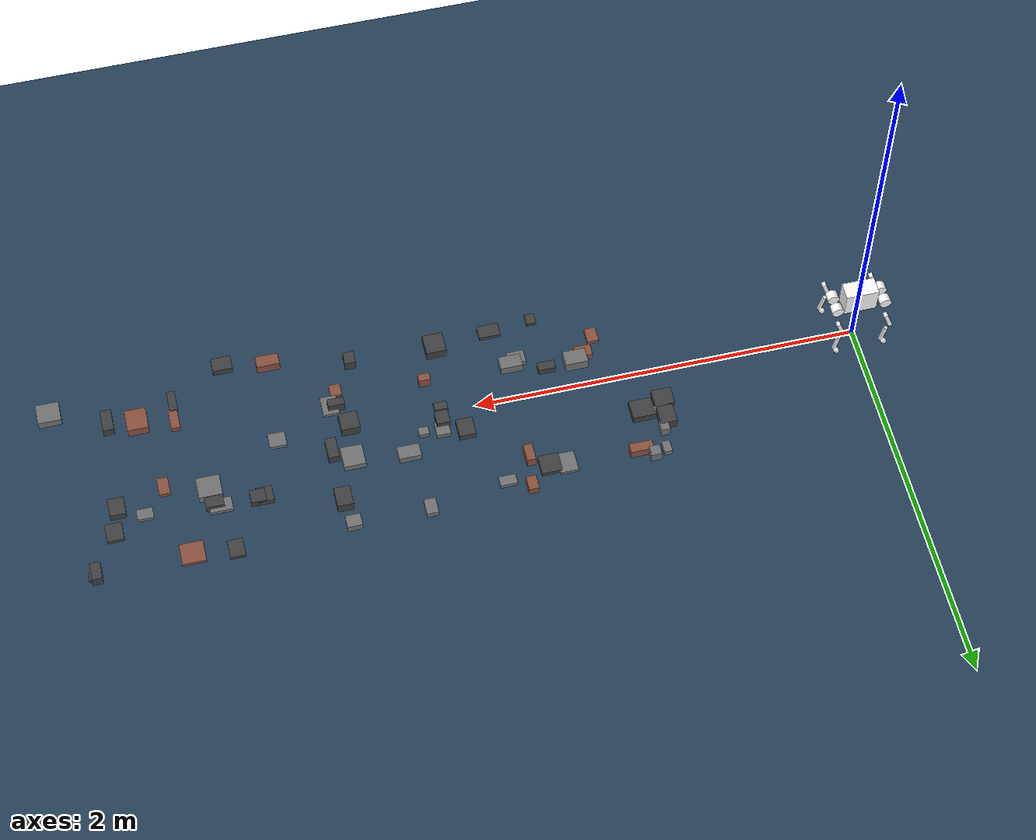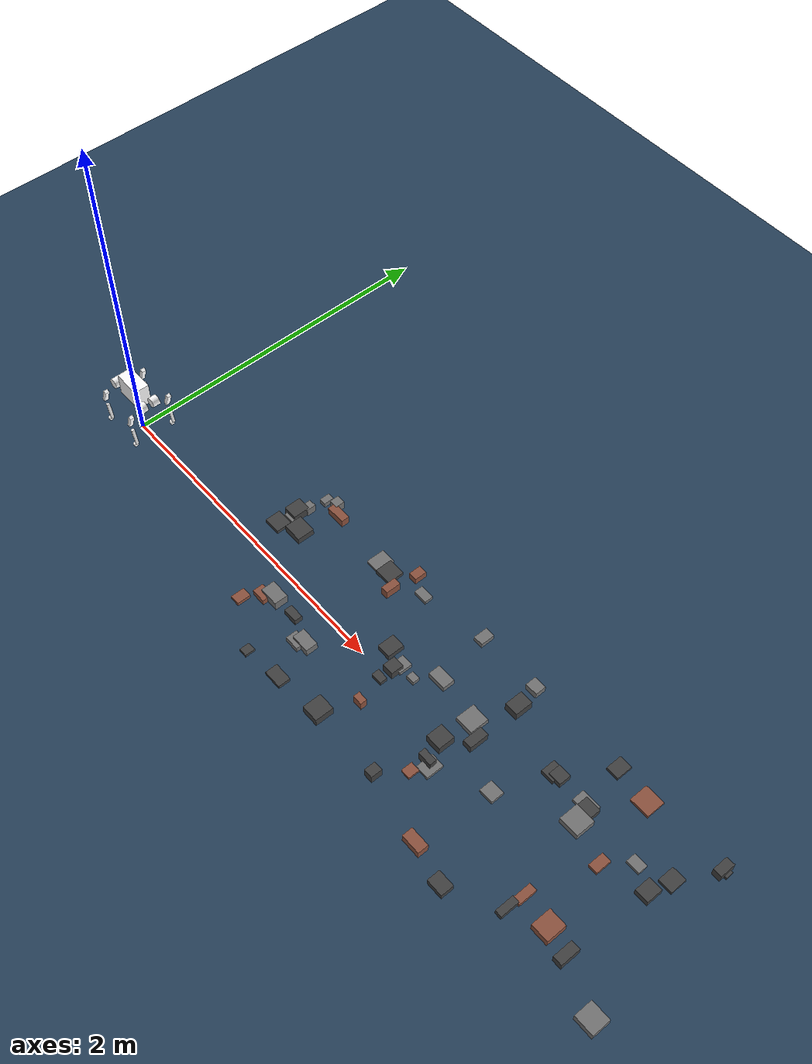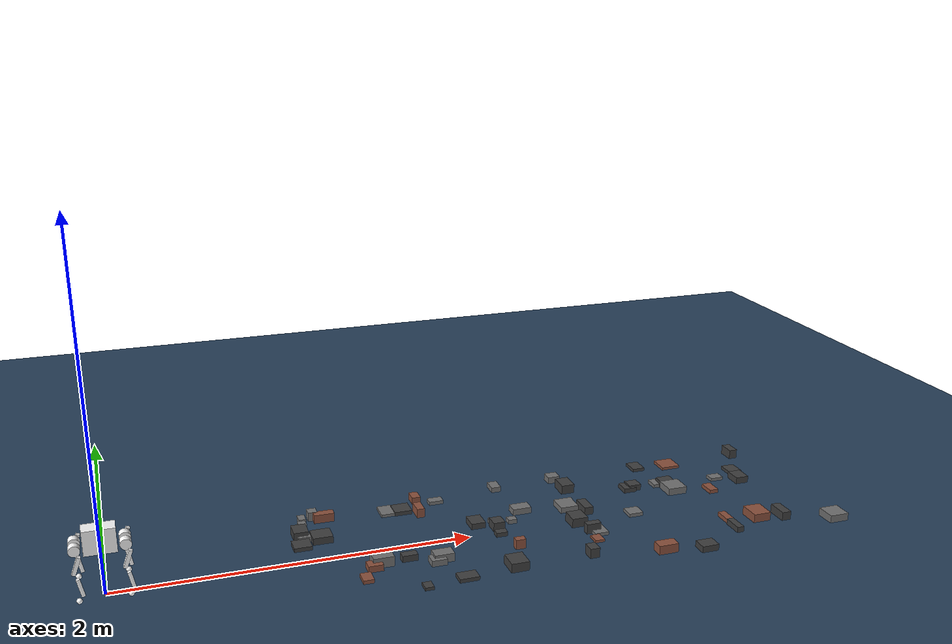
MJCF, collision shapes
<mujoco model="htdw_4438 scene debris boxes">
  <include file="htdw_4438.xml"/>

  <statistic center="0 0 0.1" extent="0.8"/>

  <visual>
    <headlight diffuse="0.6 0.6 0.6" ambient="0.3 0.3 0.3" specular="0 0 0"/>
    <rgba haze="0.15 0.25 0.35 1"/>
  </visual>

  <asset>
    <texture type="skybox" builtin="gradient" rgb1="0.3 0.5 0.7" rgb2="0 0 0" width="512" height="3072"/>
    <texture type="2d" name="groundplane" builtin="checker" mark="edge" rgb1="0.2 0.3 0.4" rgb2="0.1 0.2 0.3"
      markrgb="0.8 0.8 0.8" width="300" height="300"/>
    <material name="groundplane" texture="groundplane" texuniform="true" texrepeat="5 5" reflectance="0.2"/>

    <material name="debris_stone" rgba="0.45 0.45 0.45 1" reflectance="0.05"/>
    <material name="debris_stone2" rgba="0.25 0.25 0.25 1" reflectance="0.05"/>
    <material name="debris_brick" rgba="0.55 0.32 0.24 1" reflectance="0.05"/>
  </asset>

  <worldbody>
    <light pos="0 0 1.5" dir="0 0 -1" directional="true"/>
    <geom name="floor" size="0 0 0.05" type="plane" material="groundplane"/>

    <!-- Rubble field (static, lots of small scattered bricks/blocks). -->
    <geom pos="4.041 0.544 0.011" type="box" size="0.021 0.022 0.011" material="debris_stone2"/>
    <geom pos="1.736 -0.221 0.018" type="box" size="0.044 0.035 0.018" material="debris_stone"/>
    <geom pos="4.021 0.539 0.029" type="box" size="0.026 0.047 0.029" material="debris_stone2"/>
    <geom pos="1.830 0.530 0.022" type="box" size="0.026 0.038 0.022" material="debris_brick"/>
    <geom pos="2.763 0.398 0.028" type="box" size="0.041 0.054 0.028" material="debris_stone2"/>
    <geom pos="1.392 -0.180 0.019" type="box" size="0.043 0.032 0.019" material="debris_brick"/>
    <geom pos="3.869 0.193 0.021" type="box" size="0.041 0.049 0.021" material="debris_stone2"/>
    <geom pos="1.110 0.249 0.015" type="box" size="0.056 0.021 0.015" material="debris_stone"/>
    <geom pos="2.349 0.540 0.016" type="box" size="0.030 0.043 0.016" material="debris_stone"/>
    <geom pos="2.725 -0.162 0.010" type="box" size="0.042 0.053 0.010" material="debris_stone"/>
    <geom pos="2.679 -0.249 0.008" type="box" size="0.029 0.034 0.008" material="debris_brick"/>
    <geom pos="3.176 0.288 0.019" type="box" size="0.039 0.036 0.019" material="debris_stone2"/>
    <geom pos="2.740 0.539 0.021" type="box" size="0.038 0.033 0.021" material="debris_stone"/>
    <geom pos="2.186 0.056 0.027" type="box" size="0.035 0.038 0.027" material="debris_stone2"/>
    <geom pos="3.694 -0.283 0.026" type="box" size="0.054 0.060 0.026" material="debris_brick"/>
    <geom pos="3.738 0.253 0.010" type="box" size="0.041 0.029 0.010" material="debris_stone"/>
    <geom pos="1.121 0.471 0.016" type="box" size="0.021 0.031 0.016" material="debris_stone"/>
    <geom pos="3.545 0.523 0.009" type="box" size="0.060 0.057 0.009" material="debris_brick"/>
    <geom pos="3.218 -0.526 0.019" type="box" size="0.051 0.039 0.019" material="debris_stone2"/>
    <geom pos="1.104 0.359 0.026" type="box" size="0.023 0.028 0.026" material="debris_stone"/>
    <geom pos="3.403 0.184 0.022" type="box" size="0.060 0.058 0.022" material="debris_stone"/>
    <geom pos="3.022 -0.021 0.011" type="box" size="0.044 0.040 0.011" material="debris_stone"/>
    <geom pos="2.986 -0.482 0.027" type="box" size="0.059 0.032 0.027" material="debris_brick"/>
    <geom pos="1.187 0.228 0.021" type="box" size="0.058 0.052 0.021" material="debris_stone2"/>
    <geom pos="1.064 0.176 0.012" type="box" size="0.052 0.048 0.012" material="debris_stone2"/>
    <geom pos="4.123 -0.427 0.023" type="box" size="0.059 0.055 0.023" material="debris_stone"/>
    <geom pos="3.364 0.288 0.011" type="box" size="0.058 0.037 0.011" material="debris_stone"/>
    <geom pos="1.444 -0.140 0.030" type="box" size="0.059 0.041 0.030" material="debris_stone"/>
    <geom pos="3.508 -0.258 0.013" type="box" size="0.023 0.056 0.013" material="debris_brick"/>
    <geom pos="1.249 0.454 0.026" type="box" size="0.060 0.025 0.026" material="debris_brick"/>
    <geom pos="1.609 -0.448 0.009" type="box" size="0.025 0.030 0.009" material="debris_stone2"/>
    <geom pos="3.624 0.119 0.012" type="box" size="0.028 0.047 0.012" material="debris_brick"/>
    <geom pos="1.324 -0.277 0.011" type="box" size="0.030 0.041 0.011" material="debris_brick"/>
    <geom pos="2.390 0.208 0.019" type="box" size="0.057 0.036 0.019" material="debris_stone"/>
    <geom pos="3.392 0.251 0.021" type="box" size="0.046 0.053 0.021" material="debris_stone2"/>
    <geom pos="3.331 0.547 0.010" type="box" size="0.039 0.049 0.010" material="debris_stone2"/>
    <geom pos="2.196 0.104 0.013" type="box" size="0.036 0.040 0.013" material="debris_stone"/>
    <geom pos="2.693 -0.151 0.030" type="box" size="0.043 0.021 0.030" material="debris_stone2"/>
    <geom pos="2.764 0.105 0.024" type="box" size="0.028 0.058 0.024" material="debris_stone2"/>
    <geom pos="1.774 -0.194 0.025" type="box" size="0.057 0.036 0.025" material="debris_stone"/>
    <geom pos="1.598 -0.136 0.019" type="box" size="0.045 0.024 0.019" material="debris_stone2"/>
    <geom pos="1.805 0.361 0.028" type="box" size="0.023 0.046 0.028" material="debris_brick"/>
    <geom pos="1.943 0.475 0.011" type="box" size="0.044 0.027 0.011" material="debris_stone"/>
    <geom pos="1.077 0.298 0.027" type="box" size="0.043 0.051 0.027" material="debris_stone2"/>
    <geom pos="2.293 0.100 0.013" type="box" size="0.026 0.022 0.013" material="debris_stone"/>
    <geom pos="1.188 0.494 0.028" type="box" size="0.027 0.027 0.028" material="debris_stone"/>
    <geom pos="3.840 -0.311 0.026" type="box" size="0.028 0.059 0.026" material="debris_stone2"/>
    <geom pos="2.650 -0.028 0.028" type="box" size="0.048 0.050 0.028" material="debris_stone2"/>
    <geom pos="2.226 -0.196 0.029" type="box" size="0.030 0.020 0.029" material="debris_brick"/>
    <geom pos="2.130 -0.390 0.027" type="box" size="0.052 0.056 0.027" material="debris_stone2"/>
    <geom pos="1.837 -0.423 0.011" type="box" size="0.056 0.037 0.011" material="debris_stone2"/>
    <geom pos="1.630 0.438 0.009" type="box" size="0.047 0.056 0.009" material="debris_stone"/>
    <geom pos="3.902 0.321 0.010" type="box" size="0.043 0.050 0.010" material="debris_stone2"/>
    <geom pos="1.716 0.429 0.012" type="box" size="0.053 0.052 0.012" material="debris_stone2"/>
    <geom pos="2.081 0.130 0.018" type="box" size="0.043 0.051 0.018" material="debris_stone2"/>
    <geom pos="2.575 -0.400 0.029" type="box" size="0.028 0.034 0.029" material="debris_stone2"/>
    <geom pos="2.178 -0.028 0.013" type="box" size="0.034 0.023 0.013" material="debris_stone2"/>
    <geom pos="3.139 0.282 0.014" type="box" size="0.040 0.043 0.014" material="debris_stone2"/>
    <geom pos="3.501 -0.363 0.017" type="box" size="0.021 0.056 0.017" material="debris_stone2"/>
    <geom pos="2.670 0.168 0.018" type="box" size="0.056 0.058 0.018" material="debris_stone"/>
  </worldbody>
</mujoco>

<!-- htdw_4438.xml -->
<mujoco model="htdw_4438">
    <compiler angle="radian" meshdir="../meshes" />
    <size njmax="500" nconmax="100" />

    <asset>
        <mesh name="base_link_simple" file="base_link_simple.STL" />
        <mesh name="FL_hip" file="FL_hip.STL" />
        <mesh name="FL_thigh" file="FL_thigh.STL" />
        <mesh name="FL_calf" file="FL_calf.STL" />
        <mesh name="FL_foot" file="FL_foot.STL" />
        <mesh name="FR_hip" file="FR_hip.STL" />
        <mesh name="FR_thigh" file="FR_thigh.STL" />
        <mesh name="FR_calf" file="FR_calf.STL" />
        <mesh name="FR_foot" file="FR_foot.STL" />
        <mesh name="RL_hip" file="RL_hip.STL" />
        <mesh name="RL_thigh" file="RL_thigh.STL" />
        <mesh name="RL_calf" file="RL_calf.STL" />
        <mesh name="RL_foot" file="RL_foot.STL" />
        <mesh name="RR_hip" file="RR_hip.STL" />
        <mesh name="RR_thigh" file="RR_thigh.STL" />
        <mesh name="RR_calf" file="RR_calf.STL" />
        <mesh name="RR_foot" file="RR_foot.STL" />
    </asset>

    <!-- 统一设置阻尼、摩擦力、碰撞解算参数 -->
    <default>
        <!-- IsaacGym/LeggedGym cfg.asset.armature = 0.005; 这里对齐以提升数值稳定性 -->
	        <!-- URDF 未显式设置关节被动阻尼；此处设为 0 以对齐 IsaacGym（被动阻尼主要由 PD 的 Kd 提供） -->
	        <joint limited="true" damping="0.0" frictionloss="0.0" armature="0.005"/>
        <!-- 原 solref=0.005 过硬，容易在接触+高频PD下抖动；改为更温和的接触时间常数 -->
        <geom contype="1" conaffinity="1" friction="0.8 0.05 0.05" solref="0.02 1"/>
    </default>

    <worldbody>
        <!-- Robot Base (Root Body) from Snippet -->
        <body name="robot" pos="0 0 0.3" quat="1 0 0 0">
            <joint name="float_base" type="free" limited="false"/>
	        <!-- 与 resources/robots/htdw_4438/urdf/htdw_4438.urdf 的 base_link 惯性对齐（避免 sim2sim gap） -->
	        <inertial pos="-0.00139370 0.00012462 0.01353999" quat="0.05699976 0.72222690 0.06363175 0.68636020" mass="2.68214792" diaginertia="0.01217432 0.01195068 0.00675497"/>
            <site name="imu" pos="-0.02557 0 0.04232" />

            <!-- Adding Visual Geoms from Original File to the Root Body -->
            <geom type="mesh" contype="0" conaffinity="0" group="1" rgba="1 1 1 1" mesh="base_link_simple" />
            <geom size="0.085 0.045 0.069" pos="0 0 0.025" type="box" rgba="1 1 1 1" />

            <!-- Front Left Leg -->
            <!-- Joint names changed to Uppercase to match actuators -->
            <body name="fl_hip" pos="0.0909 0.04 0">
                <inertial pos="0.0326958 0.00444394 -9.507e-05" quat="0.465966 0.463585 0.53558 0.530206" mass="0.292358" diaginertia="0.000412728 0.000405494 8.3118e-05" />
                <joint name="FL_hip_joint" pos="0 0 0" axis="1 0 0" limited="true" range="-0.9 0.9" />
                <geom type="mesh" contype="0" conaffinity="0" group="1" rgba="1 1 1 1" mesh="FL_hip" />
                <geom size="0.03 0.0225" pos="0.035 0 0" quat="0.505398 0.499971 0.499971 -0.494602" type="cylinder" rgba="1 1 1 1" />

                <body name="fl_thigh" pos="0.034 0.0254 0">
                    <inertial pos="-0.00137569 0.0379093 -0.0116534" quat="0.884178 0.465761 0.0354147 -0.00650016" mass="0.410408" diaginertia="0.00122804 0.000985868 0.000366426" />
                    <joint name="FL_thigh_joint" pos="0 0 0" axis="0 1 0" limited="true" range="-1.5 3.5" />
                    <geom type="mesh" contype="0" conaffinity="0" group="1" rgba="1 1 1 1" mesh="FL_thigh" />
                    <geom size="0.01 0.0125 0.05" pos="0.004 0.06 -0.045" quat="0.984727 0 0.174108 0" type="box" rgba="1 1 1 1" />

                    <body name="fl_calf" pos="0 0.0604 -0.12">
                        <inertial pos="0.0101367 -0.000182728 -0.0624887" quat="0.710874 -0.0477597 -0.04827 0.700034" mass="0.0469098" diaginertia="0.000213166 0.000209385 5.3017e-06" />
                        <joint name="FL_calf_joint" pos="0 0 0" axis="0 1 0" limited="true" range="-2.5 -1.2" />
                        <geom type="mesh" contype="0" conaffinity="0" group="1" rgba="1 1 1 1" mesh="FL_calf" />
                        <geom size="0.01 0.05" pos="0.013 0 -0.05" quat="0.995004 0 -0.0998334 0" type="cylinder" rgba="1 1 1 1" />

                        <!-- Foot Geoms -->
                        <geom pos="0.00206 6e-05 -0.13694" type="mesh" contype="0" conaffinity="0" group="1" rgba="1 1 1 1" mesh="FL_foot" />
                        <geom size="0.015" pos="0.00456 6e-05 -0.12424" rgba="1 1 1 1" />
                        <!-- Adding a site for possible contact sensing, though not strictly in the sensor snippet -->
                        <site name="FL_foot_site" pos="0.00456 6e-05 -0.12424" size="0.01" rgba="0 0 1 0.5"/>
                    </body>
                </body>
            </body>

            <!-- Front Right Leg -->
            <body name="fr_hip" pos="0.0909 -0.04 0">
                <inertial pos="0.0326958 -0.00444394 9.507e-05" quat="0.53558 0.530206 0.465966 0.463585" mass="0.292358" diaginertia="0.000412728 0.000405494 8.3118e-05" />
                <joint name="FR_hip_joint" pos="0 0 0" axis="1 0 0" limited="true" range="-0.9 0.9" />
                <geom type="mesh" contype="0" conaffinity="0" group="1" rgba="1 1 1 1" mesh="FR_hip" />
                <geom size="0.03 0.0225" pos="0.035 0 0" quat="0.505398 0.499971 0.499971 -0.494602" type="cylinder" rgba="1 1 1 1" />

                <body name="fr_thigh" pos="0.034 -0.0254 0">
                    <inertial pos="-0.00130371 -0.0379128 -0.0115569" quat="0.466339 0.884003 0.00461373 -0.0323373" mass="0.410408" diaginertia="0.0012278 0.000984249 0.000367077" />
                    <joint name="FR_thigh_joint" pos="0 0 0" axis="0 1 0" limited="true" range="-1.5 3.5" />
                    <geom type="mesh" contype="0" conaffinity="0" group="1" rgba="1 1 1 1" mesh="FR_thigh" />
                    <geom size="0.01 0.0125 0.05" pos="0.004 -0.06 -0.045" quat="0.984727 0 0.174108 0" type="box" rgba="1 1 1 1" />

                    <body name="fr_calf" pos="0 -0.0604 -0.12">
                        <inertial pos="0.0101597 1.52233e-05 -0.0626033" quat="0.698922 -0.0488767 -0.0472409 0.711961" mass="0.0469098" diaginertia="0.000213525 0.000209727 5.30063e-06" />
                        <joint name="FR_calf_joint" pos="0 0 0" axis="0 1 0" limited="true" range="-2.5 -1.2" />
                        <geom type="mesh" contype="0" conaffinity="0" group="1" rgba="1 1 1 1" mesh="FR_calf" />
                        <geom size="0.01 0.05" pos="0.013 0 -0.05" quat="0.995004 0 -0.0998334 0" type="cylinder" rgba="1 1 1 1" />

                        <geom pos="0.00206 6e-05 -0.13694" type="mesh" contype="0" conaffinity="0" group="1" rgba="1 1 1 1" mesh="FR_foot" />
                        <geom size="0.015" pos="0.00456 6e-05 -0.12424" rgba="1 1 1 1" />
                        <site name="FR_foot_site" pos="0.00456 6e-05 -0.12424" size="0.01" rgba="0 0 1 0.5"/>
                    </body>
                </body>
            </body>

            <!-- Rear Left Leg -->
            <body name="rl_hip" pos="-0.0909 0.04 0">
                <inertial pos="-0.0326958 0.00444394 9.507e-05" quat="0.530206 0.53558 0.463585 0.465966" mass="0.292358" diaginertia="0.000412728 0.000405494 8.3118e-05" />
                <joint name="RL_hip_joint" pos="0 0 0" axis="1 0 0" limited="true" range="-0.9 0.9" />
                <geom type="mesh" contype="0" conaffinity="0" group="1" rgba="1 1 1 1" mesh="RL_hip" />
                <geom size="0.03 0.0225" pos="-0.035 0 0" quat="0.505398 0.499971 0.499971 -0.494602" type="cylinder" rgba="1 1 1 1" />

                <body name="rl_thigh" pos="-0.034 0.0254 0">
                    <inertial pos="-0.00137569 0.0379093 -0.0116534" quat="0.884178 0.465761 0.0354147 -0.00650016" mass="0.410408" diaginertia="0.00122804 0.000985868 0.000366426" />
                    <joint name="RL_thigh_joint" pos="0 0 0" axis="0 1 0" limited="true" range="-1.5 3.5" />
                    <geom type="mesh" contype="0" conaffinity="0" group="1" rgba="1 1 1 1" mesh="RL_thigh" />
                    <geom size="0.01 0.0125 0.05" pos="0.004 0.06 -0.045" quat="0.984727 0 0.174108 0" type="box" rgba="1 1 1 1" />

                    <body name="rl_calf" pos="0 0.0604 -0.12">
                        <inertial pos="0.0095589 -0.000182728 -0.0624887" quat="0.709338 -0.0452838 -0.0455386 0.701937" mass="0.0469098" diaginertia="0.000213491 0.000208973 6.03985e-06" />
                        <joint name="RL_calf_joint" pos="0 0 0" axis="0 1 0" limited="true" range="-2.5 -1.2" />
                        <geom type="mesh" contype="0" conaffinity="0" group="1" rgba="1 1 1 1" mesh="RL_calf" />
                        <geom size="0.01 0.05" pos="0.013 0 -0.05" quat="0.995004 0 -0.0998334 0" type="cylinder" rgba="1 1 1 1" />

                        <geom pos="-0.00206 6e-05 -0.13694" type="mesh" contype="0" conaffinity="0" group="1" rgba="1 1 1 1" mesh="RL_foot" />
                        <geom size="0.015" pos="0.00044 6e-05 -0.12424" rgba="1 1 1 1" />
                        <site name="RL_foot_site" pos="0.00044 6e-05 -0.12424" size="0.01" rgba="0 0 1 0.5"/>
                    </body>
                </body>
            </body>

            <!-- Rear Right Leg -->
            <body name="rr_hip" pos="-0.0909 -0.04 0">
                <inertial pos="-0.0326958 -0.00444394 -9.507e-05" quat="0.463585 0.465966 0.530206 0.53558" mass="0.292358" diaginertia="0.000412728 0.000405494 8.3118e-05" />
                <joint name="RR_hip_joint" pos="0 0 0" axis="1 0 0" limited="true" range="-0.9 0.9" />
                <geom type="mesh" contype="0" conaffinity="0" group="1" rgba="1 1 1 1" mesh="RR_hip" />
                <geom size="0.03 0.0225" pos="-0.035 0 0" quat="0.505398 0.499971 0.499971 -0.494602" type="cylinder" rgba="1 1 1 1" />

                <body name="rr_thigh" pos="-0.034 -0.0254 0">
                    <inertial pos="-0.00130371 -0.0379128 -0.0115569" quat="0.466339 0.884003 0.00461373 -0.0323373" mass="0.410408" diaginertia="0.0012278 0.000984249 0.000367077" />
                    <joint name="RR_thigh_joint" pos="0 0 0" axis="0 1 0" limited="true" range="-1.5 3.5" />
                    <geom type="mesh" contype="0" conaffinity="0" group="1" rgba="1 1 1 1" mesh="RR_thigh" />
                    <geom size="0.01 0.0125 0.05" pos="0.004 -0.06 -0.045" quat="0.984727 0 0.174108 0" type="box" rgba="1 1 1 1" />

                    <body name="rr_calf" pos="0 -0.0604 -0.12">
                        <inertial pos="0.00958187 1.52233e-05 -0.0626033" quat="0.698998 -0.0462627 -0.044667 0.712227" mass="0.0469098" diaginertia="0.000213852 0.000209314 6.03965e-06" />
                        <joint name="RR_calf_joint" pos="0 0 0" axis="0 1 0" limited="true" range="-2.5 -1.2" />
                        <geom type="mesh" contype="0" conaffinity="0" group="1" rgba="1 1 1 1" mesh="RR_calf" />
                        <geom size="0.01 0.05" pos="0.013 0 -0.05" quat="0.995004 0 -0.0998334 0" type="cylinder" rgba="1 1 1 1" />

                        <geom pos="-0.00206 6e-05 -0.13694" type="mesh" contype="0" conaffinity="0" group="1" rgba="1 1 1 1" mesh="RR_foot" />
                        <geom size="0.015" pos="0.00044 6e-05 -0.12424" rgba="1 1 1 1" />
                        <site name="RR_foot_site" pos="0.00044 6e-05 -0.12424" size="0.01" rgba="0 0 1 0.5"/>
                    </body>
                </body>
            </body>
        </body>
    </worldbody>

    <!-- Actuator Section from Snippet -->
    <actuator>
        <motor name="FL_hip_joint" joint="FL_hip_joint" gear="1" ctrllimited="true" ctrlrange="-10 10"/>
        <motor name="FL_thigh_joint" joint="FL_thigh_joint" gear="1" ctrllimited="true" ctrlrange="-10 10"/>
        <motor name="FL_calf_joint" joint="FL_calf_joint" gear="1" ctrllimited="true" ctrlrange="-10 10"/>

        <motor name="FR_hip_joint" joint="FR_hip_joint" gear="1" ctrllimited="true" ctrlrange="-10 10"/>
        <motor name="FR_thigh_joint" joint="FR_thigh_joint" gear="1" ctrllimited="true" ctrlrange="-10 10"/>
        <motor name="FR_calf_joint" joint="FR_calf_joint" gear="1" ctrllimited="true" ctrlrange="-10 10"/>

        <motor name="RL_hip_joint" joint="RL_hip_joint" gear="1" ctrllimited="true" ctrlrange="-10 10"/>
        <motor name="RL_thigh_joint" joint="RL_thigh_joint" gear="1" ctrllimited="true" ctrlrange="-10 10"/>
        <motor name="RL_calf_joint" joint="RL_calf_joint" gear="1" ctrllimited="true" ctrlrange="-10 10"/>

        <motor name="RR_hip_joint" joint="RR_hip_joint" gear="1" ctrllimited="true" ctrlrange="-10 10"/>
        <motor name="RR_thigh_joint" joint="RR_thigh_joint" gear="1" ctrllimited="true" ctrlrange="-10 10"/>
        <motor name="RR_calf_joint" joint="RR_calf_joint" gear="1" ctrllimited="true" ctrlrange="-10 10"/>
    </actuator>

    <!-- Sensor Section from Snippet -->
    <sensor>
        <actuatorpos name='FR_hip_joint_p'  actuator='FR_hip_joint' user='13'/>
        <actuatorpos name='FR_thigh_joint_p'  actuator='FR_thigh_joint' user='13'/>
        <actuatorpos name='FR_calf_joint_p'  actuator='FR_calf_joint' user='13'/>
        <actuatorpos name='FL_hip_joint_p'  actuator='FL_hip_joint' user='13'/>
        <actuatorpos name='FL_thigh_joint_p'  actuator='FL_thigh_joint' user='13'/>
        <actuatorpos name='FL_calf_joint_p'  actuator='FL_calf_joint' user='13'/>
        <actuatorpos name='RR_hip_joint_p'  actuator='RR_hip_joint' user='13'/>
        <actuatorpos name='RR_thigh_joint_p'  actuator='RR_thigh_joint' user='13'/>
        <actuatorpos name='RR_calf_joint_p'  actuator='RR_calf_joint' user='13'/>
        <actuatorpos name='RL_hip_joint_p'  actuator='RL_hip_joint' user='13'/>
        <actuatorpos name='RL_thigh_joint_p'  actuator='RL_thigh_joint' user='13'/>
        <actuatorpos name='RL_calf_joint_p'  actuator='RL_calf_joint' user='13'/>

        <actuatorvel name='FR_hip_joint_v'  actuator='FR_hip_joint' user='13'/>
        <actuatorvel name='FR_thigh_joint_v'  actuator='FR_thigh_joint' user='13'/>
        <actuatorvel name='FR_calf_joint_v'  actuator='FR_calf_joint' user='13'/>
        <actuatorvel name='FL_hip_joint_v'  actuator='FL_hip_joint' user='13'/>
        <actuatorvel name='FL_thigh_joint_v'  actuator='FL_thigh_joint' user='13'/>
        <actuatorvel name='FL_calf_joint_v'  actuator='FL_calf_joint' user='13'/>
        <actuatorvel name='RR_hip_joint_v'  actuator='RR_hip_joint' user='13'/>
        <actuatorvel name='RR_thigh_joint_v'  actuator='RR_thigh_joint' user='13'/>
        <actuatorvel name='RR_calf_joint_v'  actuator='RR_calf_joint' user='13'/>
        <actuatorvel name='RL_hip_joint_v'  actuator='RL_hip_joint' user='13'/>
        <actuatorvel name='RL_thigh_joint_v'  actuator='RL_thigh_joint' user='13'/>
        <actuatorvel name='RL_calf_joint_v'  actuator='RL_calf_joint' user='13'/>

        <actuatorfrc name='FR_hip_joint_f'  actuator='FR_hip_joint'  user='13' noise='1e-3'/>
        <actuatorfrc name='FR_thigh_joint_f'  actuator='FR_thigh_joint'  user='13' noise='1e-3'/>
        <actuatorfrc name='FR_calf_joint_f'  actuator='FR_calf_joint'  user='13' noise='1e-3'/>
        <actuatorfrc name='FL_hip_joint_f'  actuator='FL_hip_joint'  user='13' noise='1e-3'/>
        <actuatorfrc name='FL_thigh_joint_f'  actuator='FL_thigh_joint'  user='13' noise='1e-3'/>
        <actuatorfrc name='FL_calf_joint_f'  actuator='FL_calf_joint'  user='13' noise='1e-3'/>
        <actuatorfrc name='RR_hip_joint_f'  actuator='RR_hip_joint'  user='13' noise='1e-3'/>
        <actuatorfrc name='RR_thigh_joint_f'  actuator='RR_thigh_joint'  user='13' noise='1e-3'/>
        <actuatorfrc name='RR_calf_joint_f'  actuator='RR_calf_joint'  user='13' noise='1e-3'/>
        <actuatorfrc name='RL_hip_joint_f'  actuator='RL_hip_joint'  user='13' noise='1e-3'/>
        <actuatorfrc name='RL_thigh_joint_f'  actuator='RL_thigh_joint'  user='13' noise='1e-3'/>
        <actuatorfrc name='RL_calf_joint_f'  actuator='RL_calf_joint'  user='13' noise='1e-3'/>

        <framequat     name='orientation' objtype='site' noise='0.001' objname='imu'/>
        <framepos      name='position' objtype='site' noise='0.001' objname='imu'/>
        <gyro          name='angular-velocity'    site='imu' noise='0.005' cutoff='34.9'/>
        <velocimeter   name='linear-velocity'     site='imu' noise='0.001' cutoff='30'/>
        <accelerometer name='linear-acceleration' site='imu' noise='0.005' cutoff='157'/>
        <magnetometer  name='magnetometer'        site='imu'/>
    </sensor>
</mujoco>
